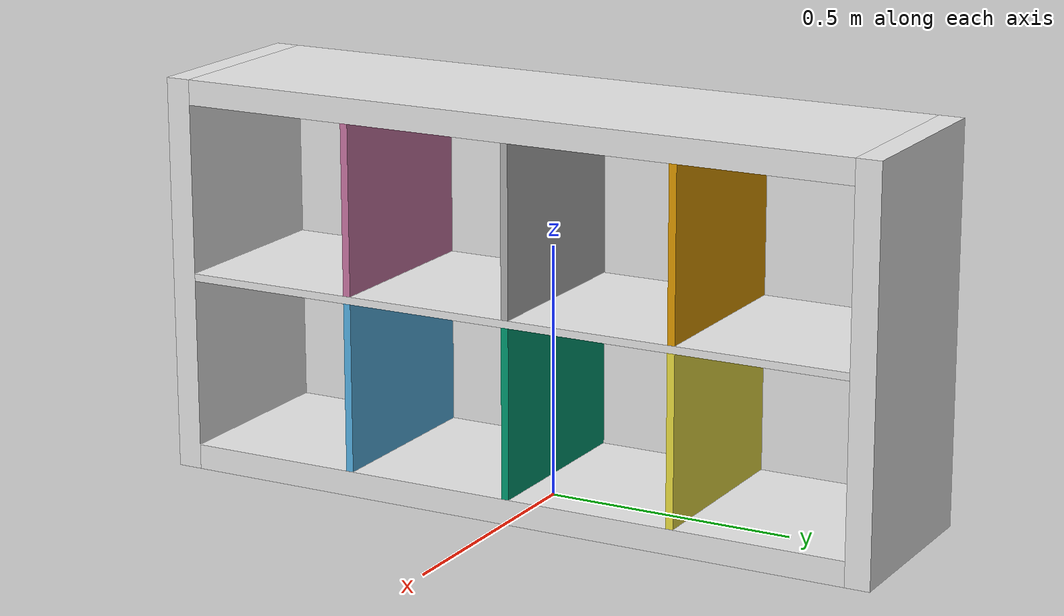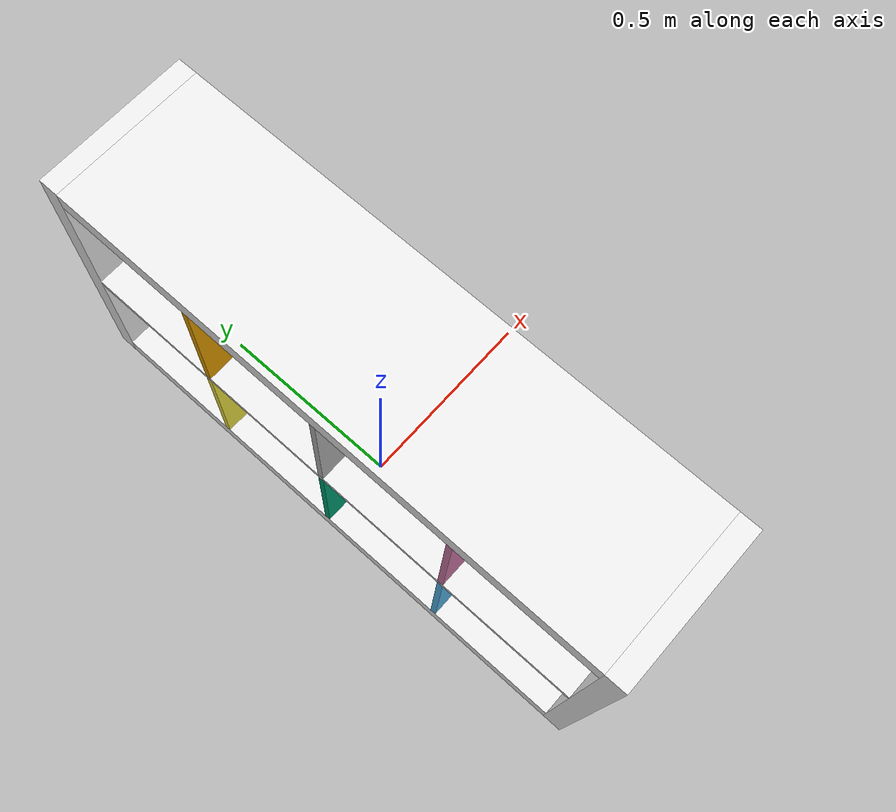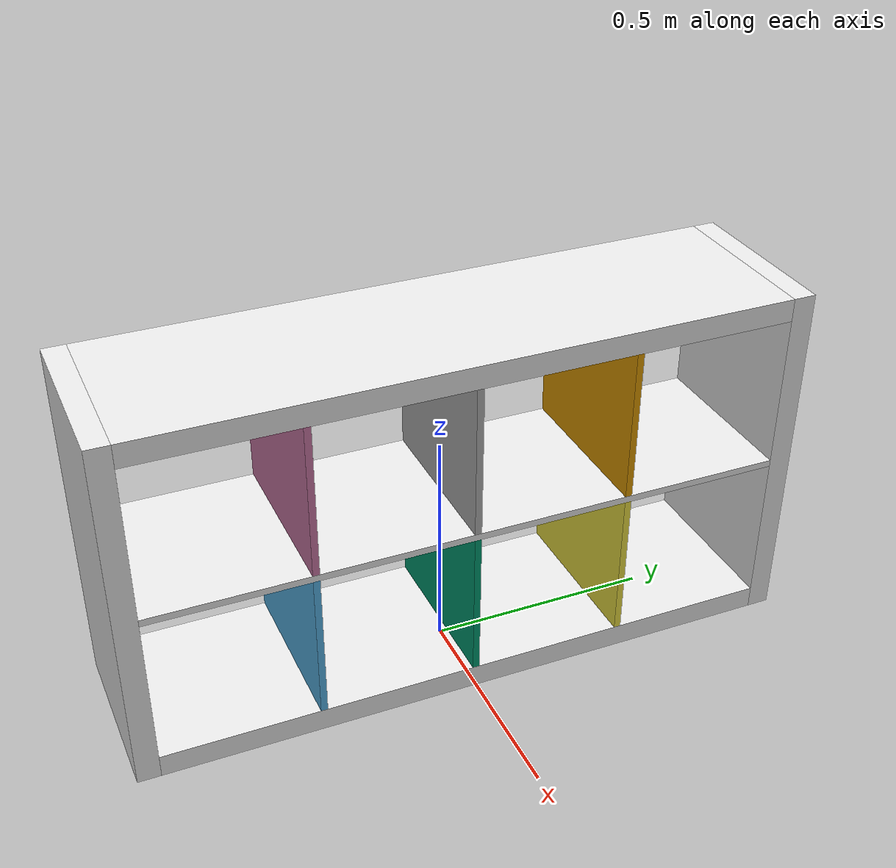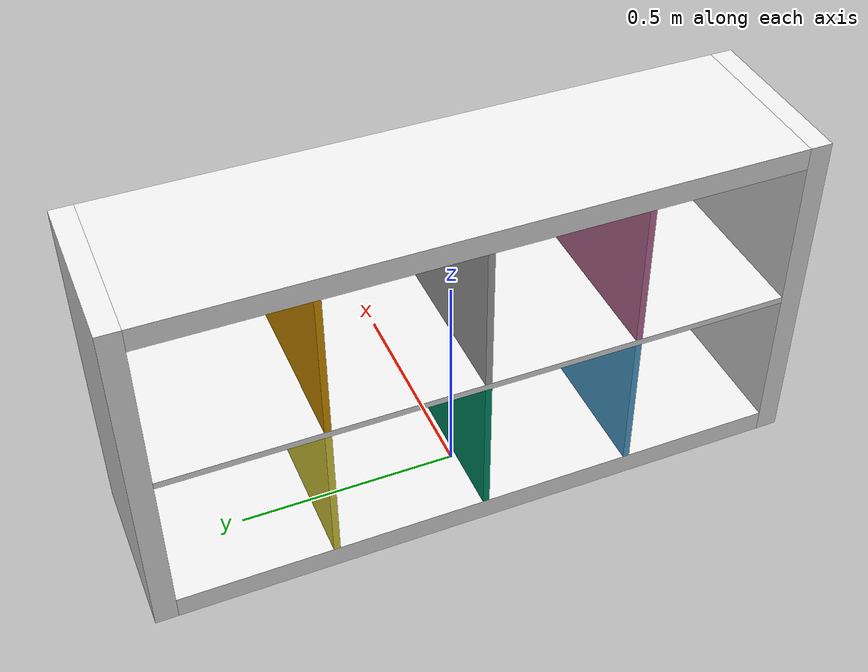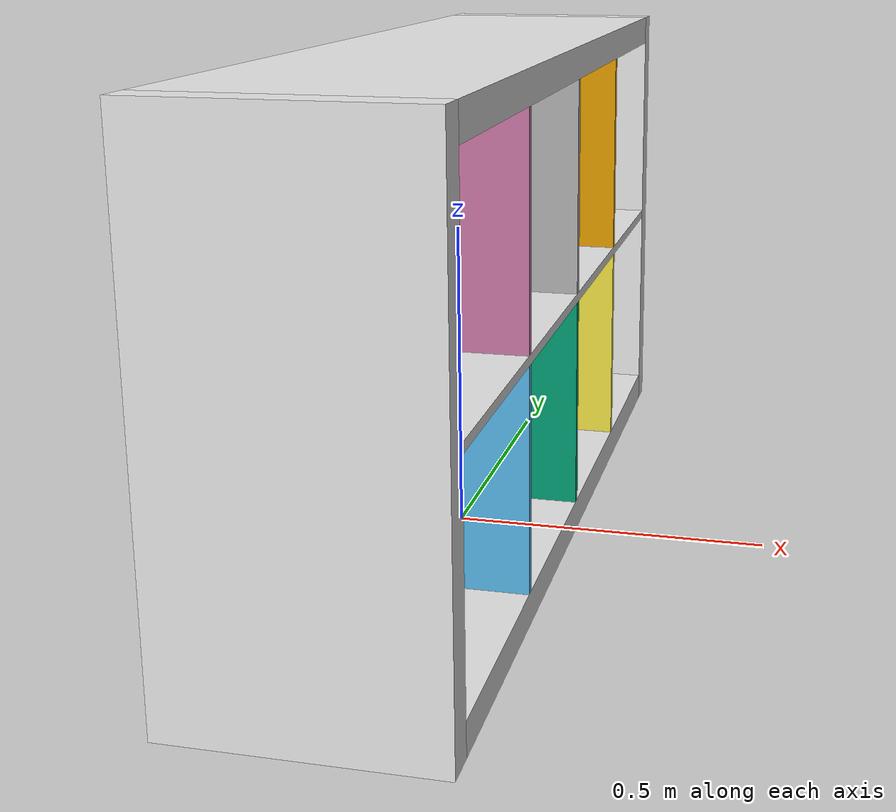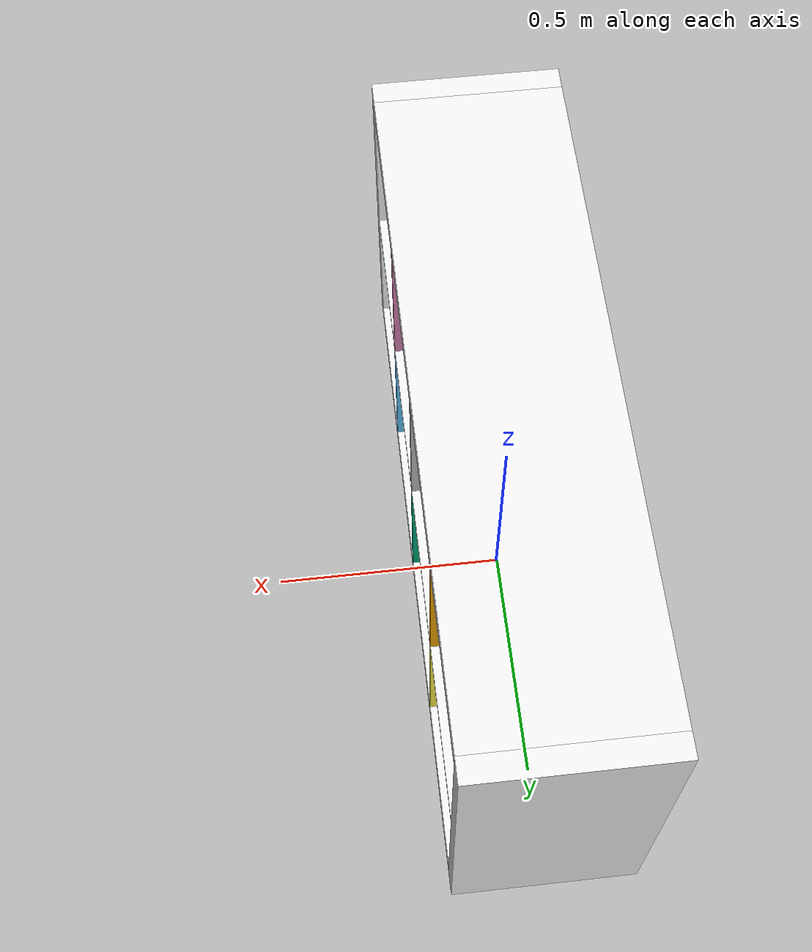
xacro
<?xml version="1.0"?>
<robot name="bookcase"
	xmlns:xacro="http://www.ros.org/wiki/xacro"
	xmlns:xi="http://www.w3.org/2001/XInclude"
	xmlns:gazebo="http://playerstage.sourceforge.net/gazebo/xmlschema/#gz"
	xmlns:model="http://playerstage.sourceforge.net/gazebo/xmlschema/#model"
	xmlns:sensor="http://playerstage.sourceforge.net/gazebo/xmlschema/#sensor"
	xmlns:body="http://playerstage.sourceforge.net/gazebo/xmlschema/#body"
	xmlns:geom="http://playerstage.sourceforge.net/gazebo/xmlschema/#geom"
	xmlns:joint="http://playerstage.sourceforge.net/gazebo/xmlschema/#joint"
	xmlns:interface="http://playerstage.sourceforge.net/gazebo/xmlschema/#interface"
	xmlns:rendering="http://playerstage.sourceforge.net/gazebo/xmlschema/#rendering"
	xmlns:renderable="http://playerstage.sourceforge.net/gazebo/xmlschema/#renderable"
	xmlns:controller="http://playerstage.sourceforge.net/gazebo/xmlschema/#controller"
	xmlns:physics="http://playerstage.sourceforge.net/gazebo/xmlschema/#physics"
>

  <xacro:property name="bookcase_height" value="0.79" />
  <xacro:property name="bookcase_width" value="0.39" />
  <xacro:property name="bookcase_depth" value="1.49" />
  <xacro:property name="bookcase_x" value="0.98" />
  <xacro:property name="bookcase_y" value="0.0" />
  <xacro:property name="bookcase_z" value="0.0" />

  <xacro:property name="bookcase_thickness_min" value="0.015"/>
  <xacro:property name="bookcase_thickness_max" value="0.05"/>

<!-- dummy_link -->
	<link name="dummy_link">
		<inertial>
			<origin xyz="0 0 0" />
			<mass value="5.0" />
			<inertia ixx="0.0" ixy="0.0" ixz="0.0" iyy="0.0" iyz="0.0" izz="0.0" />
		</inertial>
		<visual>
			<origin xyz="0 0 0" />
			<geometry>
				<box size="0.01 0.01 0.01" />
			</geometry>
		</visual>
		<collision>
			<origin xyz="0 0 0" />
			<geometry>
				<box size="0.01 0.01 0.01" />
			</geometry>
		</collision>
	</link>

<!-- bookcase -->

	<!-- bookcase_top -->
	<link name="bookcase_top_link">
		<inertial>
			<origin xyz="0 0 0" />
			<mass value="5.0" />
			<inertia ixx="0.0" ixy="0.0" ixz="0.0" iyy="0.0" iyz="0.0" izz="0.0" />
		</inertial>
		<visual>
			<origin xyz="0 0 0" />
			<geometry>
				<box size="${bookcase_width} ${bookcase_depth-2*bookcase_thickness_max} ${bookcase_thickness_max}" />
			</geometry>
		</visual>
		<collision>
			<origin xyz="0 0 0" />
			<geometry>
				<box size="${bookcase_width} ${bookcase_depth-2*bookcase_thickness_max} ${bookcase_thickness_max}" />
			</geometry>
		</collision>
	</link>

	<gazebo reference="bookcase_top_link">
		<material>Gazebo/White</material>
	</gazebo>

	<joint name="joint_bookcase_top" type="fixed">
		<origin xyz="0.000 0.000 ${bookcase_height-bookcase_thickness_max/2}" rpy="0 0 0" />
		<parent link="dummy_link" />
		<child link="bookcase_top_link" />
	</joint>

	<!-- bookcase_bottom -->
	<link name="bookcase_bottom_link">
		<inertial>
			<origin xyz="0 0 0" />
			<mass value="5.0" />
			<inertia ixx="0.0" ixy="0.0" ixz="0.0" iyy="0.0" iyz="0.0" izz="0.0" />
		</inertial>
		<visual>
			<origin xyz="0 0 0" />
			<geometry>
				<box size="${bookcase_width} ${bookcase_depth-2*bookcase_thickness_max} ${bookcase_thickness_max}" />
			</geometry>
		</visual>
		<collision>
			<origin xyz="0 0 0" />
			<geometry>
				<box size="${bookcase_width} ${bookcase_depth-2*bookcase_thickness_max} ${bookcase_thickness_max}" />
			</geometry>
		</collision>
	</link>

	<gazebo reference="bookcase_bottom_link">
		<material>Gazebo/White</material>
	</gazebo>

	<joint name="joint_bookcase_bottom" type="fixed">
		<origin xyz="0.000 0.000 ${bookcase_thickness_max/2}" rpy="0 0 0" />
		<parent link="dummy_link" />
		<child link="bookcase_bottom_link" />
	</joint>

	<!-- bookcase_middle -->
	<link name="bookcase_middle">
		<inertial>
			<origin xyz="0 0 0" />
			<mass value="5.0" />
			<inertia ixx="0.0" ixy="0.0" ixz="0.0" iyy="0.0" iyz="0.0" izz="0.0" />
		</inertial>
		<visual>
			<origin xyz="0 0 0" />
			<geometry>
				<box size="${bookcase_width} ${bookcase_depth-2*bookcase_thickness_max} ${bookcase_thickness_min}" />
			</geometry>
		</visual>
		<collision>
			<origin xyz="0 0 0" />
			<geometry>
				<box size="${bookcase_width} ${bookcase_depth-2*bookcase_thickness_max} ${bookcase_thickness_min}" />
			</geometry>
		</collision>
	</link>

	<gazebo reference="bookcase_middle">
		<material>Gazebo/White</material>
	</gazebo>

	<joint name="joint_bookcase_middle" type="fixed">
		<origin xyz="0.000 0.000 ${bookcase_height/2}" rpy="0 0 0" />
		<parent link="dummy_link" />
		<child link="bookcase_middle" />
	</joint>

	<!-- bookcase_right -->
	<link name="bookcase_right">
		<inertial>
			<origin xyz="0 0 0" />
			<mass value="5.0" />
			<inertia ixx="0.0" ixy="0.0" ixz="0.0" iyy="0.0" iyz="0.0" izz="0.0" />
		</inertial>
		<visual>
			<origin xyz="0 0 0" />
			<geometry>
				<box size="${bookcase_width} ${bookcase_thickness_max} ${bookcase_height}" />
			</geometry>
		</visual>
		<collision>
			<origin xyz="0 0 0" />
			<geometry>
				<box size="${bookcase_width} ${bookcase_thickness_max} ${bookcase_height}" />
			</geometry>
		</collision>
	</link>

	<gazebo reference="bookcase_right">
		<material>Gazebo/White</material>
	</gazebo>

	<joint name="joint_bookcase_right" type="fixed">
		<origin xyz="0.0 ${bookcase_depth/2-bookcase_thickness_max/2} ${bookcase_height/2}" rpy="0 0 0" />
		<parent link="dummy_link" />
		<child link="bookcase_right" />
	</joint>

	<!-- bookcase_left -->
	<link name="bookcase_left">
		<inertial>
			<origin xyz="0 0 0" />
			<mass value="5.0" />
			<inertia ixx="0.0" ixy="0.0" ixz="0.0" iyy="0.0" iyz="0.0" izz="0.0" />
		</inertial>
		<visual>
			<origin xyz="0 0 0" />
			<geometry>
				<box size="${bookcase_width} ${bookcase_thickness_max} ${bookcase_height}" />
			</geometry>
		</visual>
		<collision>
			<origin xyz="0 0 0" />
			<geometry>
				<box size="${bookcase_width} ${bookcase_thickness_max} ${bookcase_height}" />
			</geometry>
		</collision>
	</link>

	<gazebo reference="bookcase_left">
		<material>Gazebo/White</material>
	</gazebo>

	<joint name="joint_bookcase_left" type="fixed">
		<origin xyz="0.0 ${-bookcase_depth/2+bookcase_thickness_max/2} ${bookcase_height/2}" rpy="0 0 0" />
		<parent link="dummy_link" />
		<child link="bookcase_left" />
	</joint>

	<!--Separations-->

    <xacro:macro name="separations" params="suffix parent pos">

        <link name="separation_${suffix}_link">
            <inertial>
		<origin xyz="0 0 0" />
                <mass value="0.5" />
                <inertia  ixx="0" ixy="0" ixz="0"
                          iyy="0" iyz="0"
                          izz="0" />
            </inertial>

            <visual>
                <origin xyz="0 0 0" />
                <geometry>
			<box size="${bookcase_width} ${bookcase_thickness_min} 0.3375" />
                </geometry>
            </visual>

            <collision>
                <origin xyz="0 0 0" />
                <geometry>
			<box size="${bookcase_width} ${bookcase_thickness_min} 0.33" />
                </geometry>
            </collision>
        </link>

	<gazebo reference="separations">
		<material>Gazebo/White</material>
		<turnGravityOff>false</turnGravityOff>
	</gazebo>
      <joint name="separation_${suffix}_joint" type="fixed" >
    	<parent link="${parent}" />
    	<origin xyz="${pos}" rpy="0 0 0" />
        <child link="separation_${suffix}_link" />
      </joint>

  </xacro:macro>
	<separations suffix="1" parent="bookcase_top_link" pos="0 -${bookcase_thickness_min/2+0.3375} -${bookcase_thickness_max/2+0.3375/2}"/>
	<separations suffix="2" parent="bookcase_top_link" pos="0 0 -${bookcase_thickness_max/2+0.3375/2}"/>
	<separations suffix="3" parent="bookcase_top_link" pos="0 ${bookcase_thickness_min/2+0.3375} -${bookcase_thickness_max/2+0.3375/2}"/>
        <separations suffix="4" parent="bookcase_bottom_link"  pos="0 -${bookcase_thickness_min/2+0.3375} ${bookcase_thickness_max/2+0.3375/2}"/>
        <separations suffix="5" parent="bookcase_bottom_link"  pos="0 0 ${bookcase_thickness_max/2+0.3375/2}"/>
        <separations suffix="6" parent="bookcase_bottom_link"  pos="0 ${bookcase_thickness_min/2+0.3375} ${bookcase_thickness_max/2+0.3375/2}"/>

</robot>
